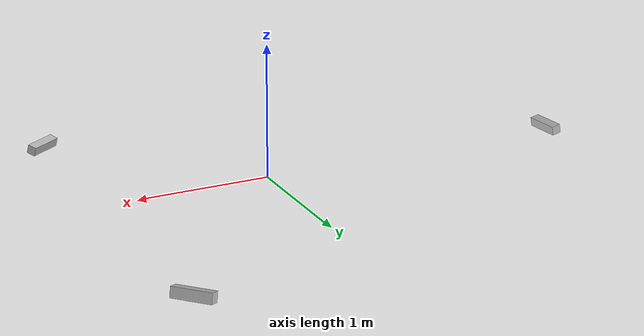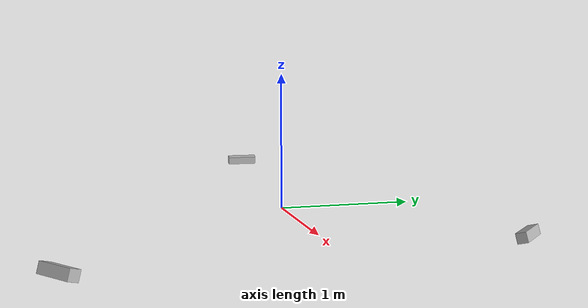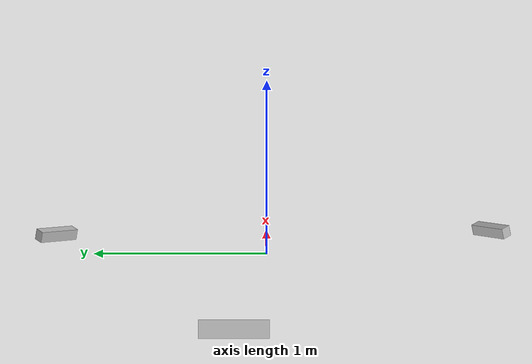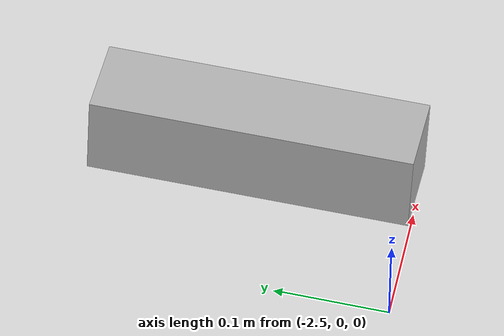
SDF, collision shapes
<?xml version='1.0'?>
<sdf version='1.7'>
  <model name='camerakinect'>
    <model name='kinect'>
      <pose>-2.40838 0.133775 0.090511 0 0.215076 0</pose>
      <link name='link'>
        <inertial>
          <mass>0.1</mass>
        </inertial>
        <collision name='collision'>
          <geometry>
            <box>
              <size>0.073 0.276 0.072</size>
            </box>
          </geometry>
        </collision>
        <visual name='visual'>
          <geometry>
            <mesh>
              <uri>model://kinect/meshes/kinect.dae</uri>
            </mesh>
          </geometry>
        </visual>
        <sensor name='camera' type='depth'>
          <update_rate>20</update_rate>
          <camera>
            <horizontal_fov>1.0472</horizontal_fov>
            <image>
              <width>640</width>
              <height>480</height>
              <format>R8G8B8</format>
            </image>
            <clip>
              <near>0.05</near>
              <far>3</far>
            </clip>
          </camera>
          <plugin name='camera_plugin' filename='libgazebo_ros_openni_kinect.so'>
            <baseline>0.2</baseline>
            <alwaysOn>1</alwaysOn>
            <updateRate>20</updateRate>
            <cameraName>camera_ir</cameraName>
            <imageTopicName>/camera/color/image_raw</imageTopicName>
            <cameraInfoTopicName>/camera/color/camera_info</cameraInfoTopicName>
            <depthImageTopicName>/camera/depth/image_raw</depthImageTopicName>
            <depthImageCameraInfoTopicName>/camera/depth/camera_info</depthImageCameraInfoTopicName>
            <pointCloudTopicName>/camera/depth/points</pointCloudTopicName>
            <frameName>camera_link</frameName>
            <pointCloudCutoff>0.5</pointCloudCutoff>
            <pointCloudCutoffMax>3.0</pointCloudCutoffMax>
            <distortionK1>0</distortionK1>
            <distortionK2>0</distortionK2>
            <distortionK3>0</distortionK3>
            <distortionT1>0</distortionT1>
            <distortionT2>0</distortionT2>
            <CxPrime>0</CxPrime>
            <Cx>0</Cx>
            <Cy>0</Cy>
            <focalLength>0</focalLength>
            <hackBaseline>0</hackBaseline>
          </plugin>
        </sensor>
      </link>
    </model>
    <model name='kinect1a'>
      <pose>1.12864 1.40032 -0.046276 -0.024562 0.263544 -2.40746</pose>
      <link name='link'>
        <inertial>
          <mass>0.1</mass>
        </inertial>
        <collision name='collision'>
          <geometry>
            <box>
              <size>0.073 0.276 0.072</size>
            </box>
          </geometry>
        </collision>
        <visual name='visual'>
          <geometry>
            <mesh>
              <uri>model://kinect/meshes/kinect.dae</uri>
            </mesh>
          </geometry>
        </visual>
        <sensor name='camera' type='depth'>
          <update_rate>20</update_rate>
          <camera>
            <horizontal_fov>1.0472</horizontal_fov>
            <image>
              <width>640</width>
              <height>480</height>
              <format>R8G8B8</format>
            </image>
            <clip>
              <near>0.05</near>
              <far>3</far>
            </clip>
          </camera>
          <plugin name='camera_plugin' filename='libgazebo_ros_openni_kinect.so'>
            <baseline>0.2</baseline>
            <alwaysOn>1</alwaysOn>
            <updateRate>0.0</updateRate>
            <cameraName>camera_ir</cameraName>
            <imageTopicName>/camera/color/image_raw1</imageTopicName>
            <cameraInfoTopicName>/camera/color/camera_info</cameraInfoTopicName>
            <depthImageTopicName>/camera/depth/image_raw1</depthImageTopicName>
            <depthImageCameraInfoTopicName>/camera/depth/camera_info</depthImageCameraInfoTopicName>
            <pointCloudTopicName>/camera/depth/points</pointCloudTopicName>
            <frameName>camera_link1</frameName>
            <pointCloudCutoff>0.5</pointCloudCutoff>
            <pointCloudCutoffMax>3.0</pointCloudCutoffMax>
            <distortionK1>0</distortionK1>
            <distortionK2>0</distortionK2>
            <distortionK3>0</distortionK3>
            <distortionT1>0</distortionT1>
            <distortionT2>0</distortionT2>
            <CxPrime>0</CxPrime>
            <Cx>0</Cx>
            <Cy>0</Cy>
            <focalLength>0</focalLength>
            <hackBaseline>0</hackBaseline>
          </plugin>
        </sensor>
      </link>
    </model>
    <model name='kinect1b'>
      <pose>1.27974 -1.53409 -0.044234 0.002259 0.295878 2.22653</pose>
      <link name='link'>
        <inertial>
          <mass>0.1</mass>
        </inertial>
        <collision name='collision'>
          <geometry>
            <box>
              <size>0.073 0.276 0.072</size>
            </box>
          </geometry>
        </collision>
        <visual name='visual'>
          <geometry>
            <mesh>
              <uri>model://kinect/meshes/kinect.dae</uri>
            </mesh>
          </geometry>
        </visual>
        <sensor name='camera' type='depth'>
          <update_rate>20</update_rate>
          <camera>
            <horizontal_fov>1.0472</horizontal_fov>
            <image>
              <width>640</width>
              <height>480</height>
              <format>R8G8B8</format>
            </image>
            <clip>
              <near>0.05</near>
              <far>3</far>
            </clip>
          </camera>
          <plugin name='camera_plugin' filename='libgazebo_ros_openni_kinect.so'>
            <baseline>0.2</baseline>
            <alwaysOn>1</alwaysOn>
            <updateRate>0.0</updateRate>
            <cameraName>camera_ir</cameraName>
            <imageTopicName>/camera/color/image_raw2</imageTopicName>
            <cameraInfoTopicName>/camera/color/camera_info</cameraInfoTopicName>
            <depthImageTopicName>/camera/depth/image_raw2</depthImageTopicName>
            <depthImageCameraInfoTopicName>/camera/depth/camera_info</depthImageCameraInfoTopicName>
            <pointCloudTopicName>/camera/depth/points</pointCloudTopicName>
            <frameName>camera_link2</frameName>
            <pointCloudCutoff>0.5</pointCloudCutoff>
            <pointCloudCutoffMax>3.0</pointCloudCutoffMax>
            <distortionK1>0</distortionK1>
            <distortionK2>0</distortionK2>
            <distortionK3>0</distortionK3>
            <distortionT1>0</distortionT1>
            <distortionT2>0</distortionT2>
            <CxPrime>0</CxPrime>
            <Cx>0</Cx>
            <Cy>0</Cy>
            <focalLength>0</focalLength>
            <hackBaseline>0</hackBaseline>
          </plugin>
        </sensor>
      </link>
    </model>
    <static>0</static>
    <allow_auto_disable>1</allow_auto_disable>
  </model>
</sdf>
